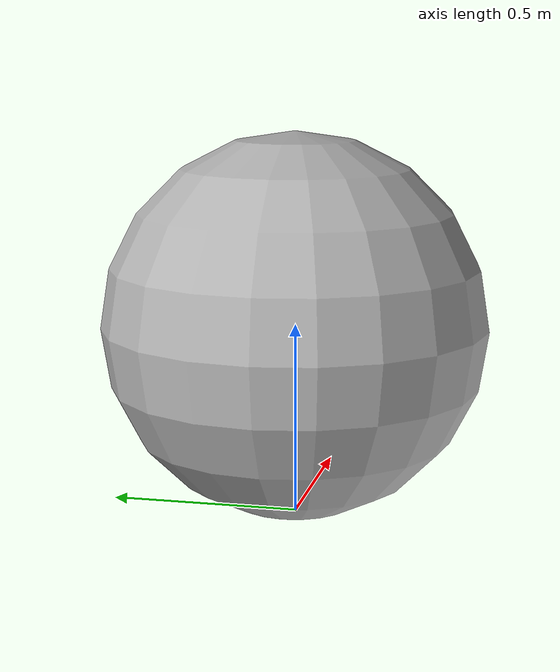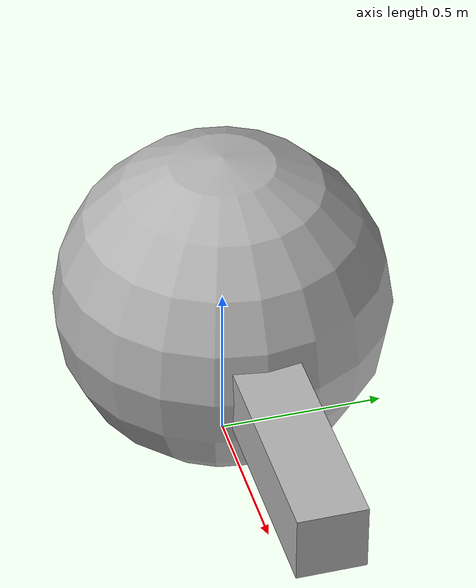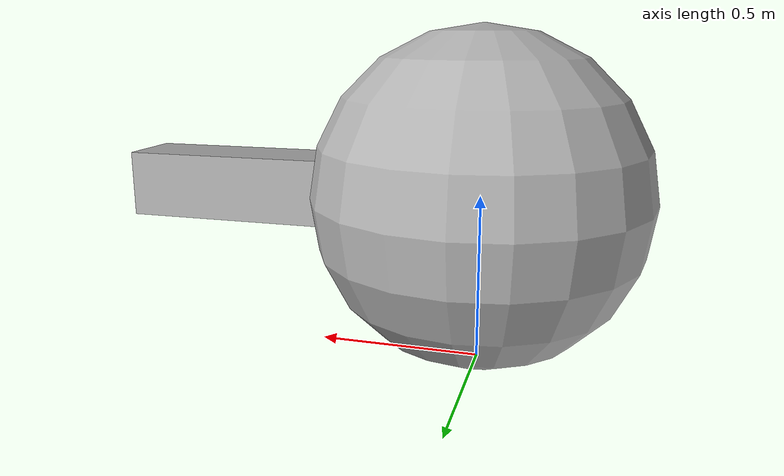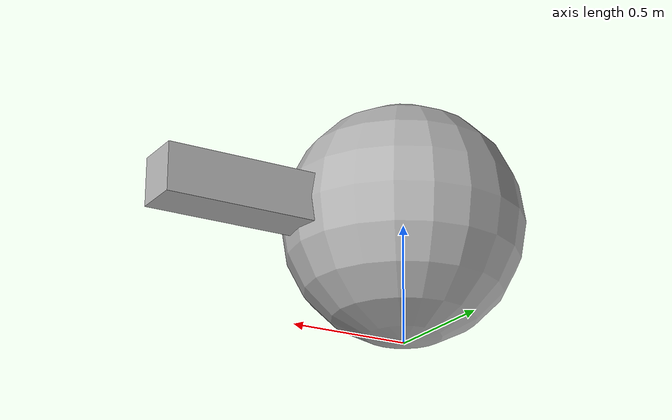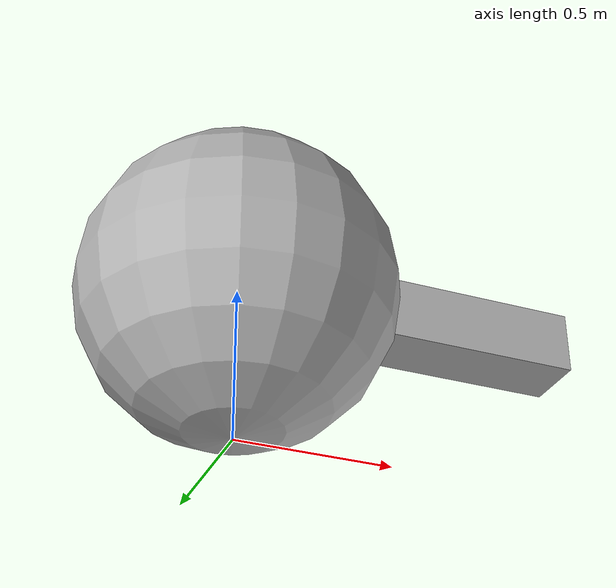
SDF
<?xml version="1.0"?>
<sdf version='1.11'>
  <model name='point'>
    <link name='anchor'>
      <inertial>
        <pose>0 0 0 0 0 0</pose>
        <mass>1.9999999999999999e-06</mass>
        <inertia>
          <ixx>2.0000000000000001e-09</ixx>
          <ixy>0</ixy>
          <ixz>0</ixz>
          <iyy>2.0000000000000001e-09</iyy>
          <iyz>0</iyz>
          <izz>2.0000000000000001e-09</izz>
        </inertia>
      </inertial>
    </link>
    <joint name='ballx' type='prismatic'>
      <pose relative_to='anchor'>0 0 0 0 0 0</pose>
      <parent>anchor</parent>
      <child>carrier_x</child>
      <axis>
        <xyz>1 0 0</xyz>
        <limit>
          <lower>-5</lower>
          <upper>5</upper>
          <effort>0</effort>
          <velocity>0</velocity>
        </limit>
        <dynamics>
          <damping>1</damping>
          <friction>0.0001</friction>
          <spring_reference>0</spring_reference>
          <spring_stiffness>0</spring_stiffness>
        </dynamics>
      </axis>
    </joint>
    <link name='carrier_x'>
      <pose relative_to='ballx'>0 0 0 0 0 0</pose>
      <inertial>
        <pose>0 0 0 0 0 0</pose>
        <mass>9.9999999999999995e-07</mass>
        <inertia>
          <ixx>1.0000000000000001e-09</ixx>
          <ixy>0</ixy>
          <ixz>0</ixz>
          <iyy>1.0000000000000001e-09</iyy>
          <iyz>0</iyz>
          <izz>1.0000000000000001e-09</izz>
        </inertia>
      </inertial>
    </link>
    <joint name='bally' type='prismatic'>
      <pose relative_to='carrier_x'>0 0 0 0 0 0</pose>
      <parent>carrier_x</parent>
      <child>carrier_y</child>
      <axis>
        <xyz>0 1 0</xyz>
        <limit>
          <lower>-5</lower>
          <upper>5</upper>
          <effort>0</effort>
          <velocity>0</velocity>
        </limit>
        <dynamics>
          <damping>1</damping>
          <friction>0.0001</friction>
          <spring_reference>0</spring_reference>
          <spring_stiffness>0</spring_stiffness>
        </dynamics>
      </axis>
    </joint>
    <link name='carrier_y'>
      <pose relative_to='bally'>0 0 0 0 0 0</pose>
      <inertial>
        <pose>0 0 0 0 0 0</pose>
        <mass>9.9999999999999995e-07</mass>
        <inertia>
          <ixx>1.0000000000000001e-09</ixx>
          <ixy>0</ixy>
          <ixz>0</ixz>
          <iyy>1.0000000000000001e-09</iyy>
          <iyz>0</iyz>
          <izz>1.0000000000000001e-09</izz>
        </inertia>
      </inertial>
    </link>
    <joint name='rot' type='revolute'>
      <pose relative_to='carrier_y'>0 0 0 0 0 0</pose>
      <parent>carrier_y</parent>
      <child>body</child>
      <axis>
        <xyz>0 0 1</xyz>
        <limit>
          <lower>-inf</lower>
          <upper>inf</upper>
        </limit>
        <dynamics>
          <damping>1</damping>
          <friction>0.0001</friction>
          <spring_reference>0</spring_reference>
          <spring_stiffness>0</spring_stiffness>
        </dynamics>
      </axis>
    </joint>
    <link name='body'>
      <pose relative_to='rot'>0 0 0 0 0 0</pose>
      <inertial>
        <pose>0 0 0 0 0 0</pose>
        <mass>1.0</mass>
        <inertia>
          <ixx>0.1</ixx>
          <ixy>0</ixy>
          <ixz>0</ixz>
          <iyy>0.1</iyy>
          <iyz>0</iyz>
          <izz>0.1</izz>
        </inertia>
      </inertial>
      <collision name='body_fixed_joint_lump__torso_collision'>
        <pose>0 0 0.5 0 0 0</pose>
        <geometry>
          <sphere>
            <radius>0.5</radius>
          </sphere>
        </geometry>
      </collision>
      <visual name='body_fixed_joint_lump__torso_visual'>
        <pose>0 0 0.5 0 0 0</pose>
        <geometry>
          <sphere>
            <radius>0.5</radius>
          </sphere>
        </geometry>
              <material>
          <ambient>0.5 0.5 0.5 1</ambient>
          <diffuse>0.7 0.7 0.7 1</diffuse>
          <specular>0.1 0.1 0.1 1</specular>
        </material>
      </visual>
      <collision name='body_fixed_joint_lump__torso_collision_1'>
        <pose>0.59999999999999998 0 0.5 0 0 0</pose>
        <geometry>
          <box>
            <size>1 0.20000000000000001 0.20000000000000001</size>
          </box>
        </geometry>
      </collision>
      <visual name='body_fixed_joint_lump__torso_1_visual'>
        <pose>0.59999999999999998 0 0.5 0 0 0</pose>
        <geometry>
          <box>
            <size>1 0.20000000000000001 0.20000000000000001</size>
          </box>
        </geometry>
              <material>
          <ambient>0.5 0.5 0.5 1</ambient>
          <diffuse>0.7 0.7 0.7 1</diffuse>
          <specular>0.1 0.1 0.1 1</specular>
        </material>
      </visual>
    </link>

    <plugin
      filename="gz-sim-apply-joint-force-system"
      name="gz::sim::systems::ApplyJointForce">
      <joint_name>ballx</joint_name>
    </plugin>
    <plugin
      filename="gz-sim-apply-joint-force-system"
      name="gz::sim::systems::ApplyJointForce">
      <joint_name>bally</joint_name>
    </plugin>
    <plugin
      filename="gz-sim-joint-state-publisher-system"
      name="gz::sim::systems::JointStatePublisher">
      <joint_name>ballx</joint_name>
      <joint_name>bally</joint_name>
    </plugin>
</model>
</sdf>
